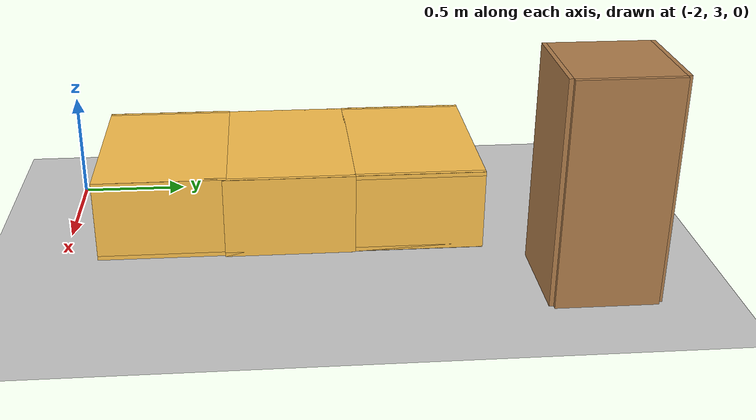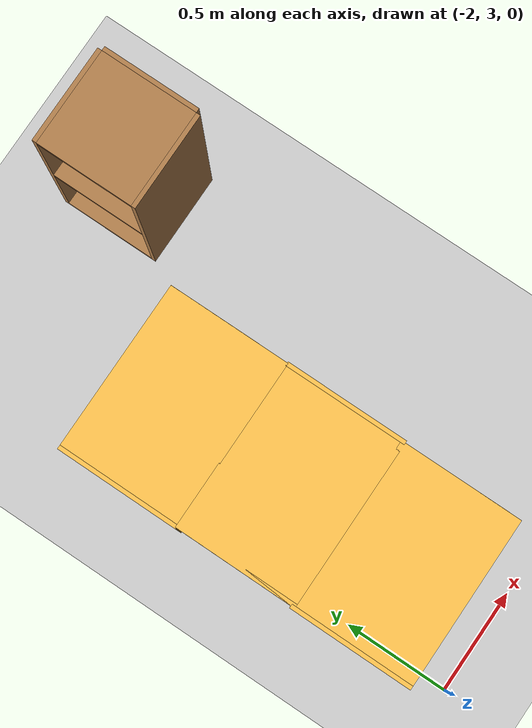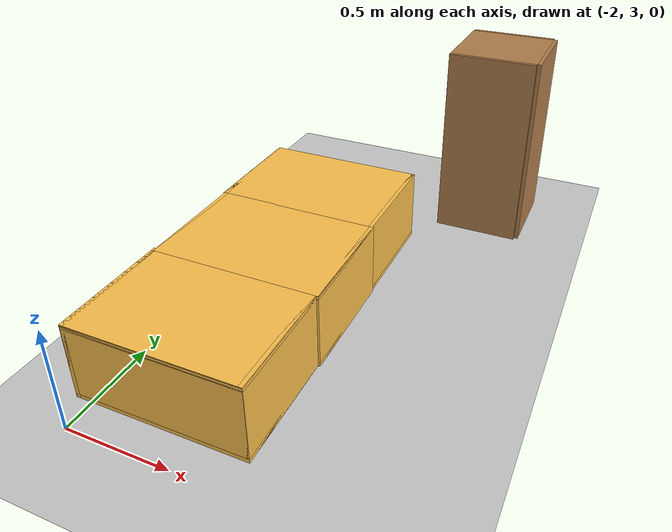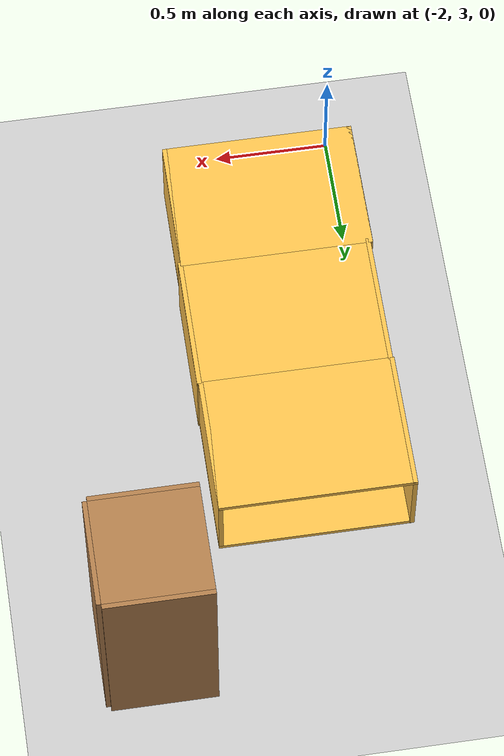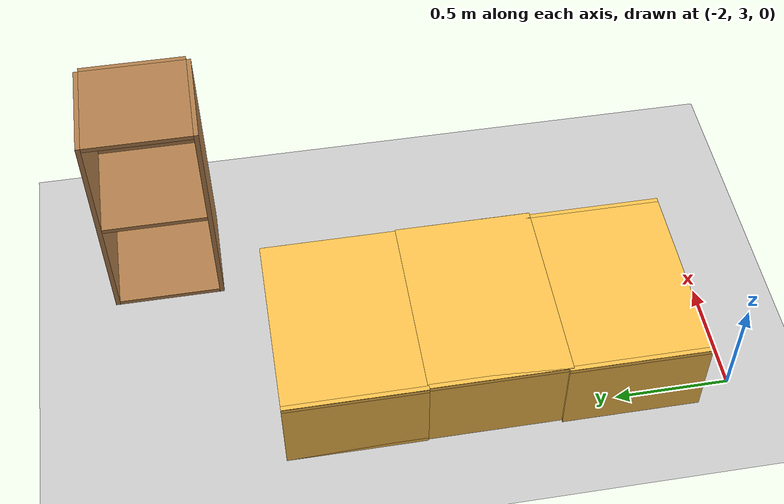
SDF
<sdf version="1.7">
 <world name="default">
  <model name="ground_plane">
   <static>1</static>
   <link name="link">
    <collision name="collision">
     <geometry><plane><normal>0 0 1</normal><size>100 100</size></plane></geometry>
     <surface><friction><ode><mu>100</mu><mu2>50</mu2></ode></friction></surface>
    </collision>
    <visual name="visual">
     <cast_shadows>0</cast_shadows>
     <geometry><plane><normal>0 0 1</normal><size>100 100</size></plane></geometry>
     <material>
      <script><uri>file://media/materials/scripts/gazebo.material</uri><name>Gazebo/Grey</name></script>
     </material>
    </visual>
   </link>
  </model>
  <model name="cabinet">
   <static>1</static>
   <link name="cabinet_bottom_plate">
    <inertial>
     <pose>0 0 -1 0 -0 0</pose>
     <inertia><ixx>2.05</ixx><ixy>0</ixy><ixz>0</ixz><iyy>2.05</iyy><iyz>0</iyz><izz>2.05</izz></inertia>
     <mass>25</mass>
    </inertial>
    <collision name="cabinet_bottom_plate_geom">
     <pose>0 0 0.01 0 -0 0</pose>
     <geometry><box><size>0.45 0.45 0.02</size></box></geometry>
    </collision>
    <visual name="cabinet_bottom_plate_geom_visual">
     <pose>0 0 0.01 0 -0 0</pose>
     <geometry><box><size>0.45 0.45 0.02</size></box></geometry>
     <material>
      <script><uri>file://media/materials/scripts/gazebo.material</uri><name>Gazebo/Wood</name></script>
     </material>
    </visual>
    <collision name="cabinet_bottom_plate_geom_cabinet_back_plate">
     <pose>0.235 0 0.51 0 -0 0</pose>
     <geometry><box><size>0.02 0.45 1.02</size></box></geometry>
    </collision>
    <visual name="cabinet_bottom_plate_geom_cabinet_back_plate_visual">
     <pose>0.235 0 0.51 0 -0 0</pose>
     <geometry><box><size>0.02 0.45 1.02</size></box></geometry>
     <material>
      <script><uri>file://media/materials/scripts/gazebo.material</uri><name>Gazebo/Wood</name></script>
     </material>
    </visual>
    <collision name="cabinet_bottom_plate_geom_cabinet_left_plate">
     <pose>0 0.235 0.51 0 -0 0</pose>
     <geometry><box><size>0.45 0.02 1.02</size></box></geometry>
    </collision>
    <visual name="cabinet_bottom_plate_geom_cabinet_left_plate_visual">
     <pose>0 0.235 0.51 0 -0 0</pose>
     <geometry><box><size>0.45 0.02 1.02</size></box></geometry>
     <material>
      <script><uri>file://media/materials/scripts/gazebo.material</uri><name>Gazebo/Wood</name></script>
     </material>
    </visual>
    <collision name="cabinet_bottom_plate_geom_cabinet_middle_plate">
     <pose>0 0 0.51 0 -0 0</pose>
     <geometry><box><size>0.45 0.45 0.02</size></box></geometry>
    </collision>
    <visual name="cabinet_bottom_plate_geom_cabinet_middle_plate_visual">
     <pose>0 0 0.51 0 -0 0</pose>
     <geometry><box><size>0.45 0.45 0.02</size></box></geometry>
     <material>
      <script><uri>file://media/materials/scripts/gazebo.material</uri><name>Gazebo/Wood</name></script>
     </material>
    </visual>
    <collision name="cabinet_bottom_plate_geom_cabinet_right_plate">
     <pose>0 -0.235 0.51 0 -0 0</pose>
     <geometry><box><size>0.45 0.02 1.02</size></box></geometry>
    </collision>
    <visual name="cabinet_bottom_plate_geom_cabinet_right_plate_visual">
     <pose>0 -0.235 0.51 0 -0 0</pose>
     <geometry><box><size>0.45 0.02 1.02</size></box></geometry>
     <material>
      <script><uri>file://media/materials/scripts/gazebo.material</uri><name>Gazebo/Wood</name></script>
     </material>
    </visual>
    <collision name="cabinet_bottom_plate_geom_cabinet_top_plate">
     <pose>0 0 1.01 0 -0 0</pose>
     <geometry><box><size>0.45 0.45 0.02</size></box></geometry>
    </collision>
    <visual name="cabinet_bottom_plate_geom_cabinet_top_plate_visual">
     <pose>0 0 1.01 0 -0 0</pose>
     <geometry><box><size>0.45 0.45 0.02</size></box></geometry>
     <material>
      <script><uri>file://media/materials/scripts/gazebo.material</uri><name>Gazebo/Wood</name></script>
     </material>
    </visual>
   </link>
   <pose>-0.918642 5.35376 0 0 -0 0</pose>
  </model>
  <model name="Fridge_Cabinet_33x15_clone_2_clone">
   <link name="Wall_17">
    <pose>0 0 0.01 0 -0 0</pose>
    <inertial>
     <mass>4.8627</mass>
     <inertia><ixx>0.146</ixx><iyy>0.4318</iyy><izz>0.2861</izz><ixy>0</ixy><ixz>0</ixz><iyz>0</iyz></inertia>
    </inertial>
    <collision name="Wall_17_Collision"><geometry><box><size>0.84 0.6 0.02</size></box></geometry></collision>
    <visual name="Wall_17_Visual">
     <geometry><box><size>0.84 0.6 0.02</size></box></geometry>
     <material>
      <script><uri>file://media/materials/scripts/gazebo.material</uri><name>Gazebo/Grey</name></script>
      <ambient>1 0.764706 0.305882 1</ambient>
     </material>
    </visual>
   </link>
   <joint name="17_21" type="fixed">
    <pose>0.42 0 0 0 -0 0</pose>
    <parent>Wall_21</parent>
    <child>Wall_17</child>
    <axis><xyz>1 0 0</xyz><limit><lower>-1e+16</lower><upper>1e+16</upper></limit></axis>
   </joint>
   <joint name="17_19" type="fixed">
    <pose>-0.42 0 0 0 -0 0</pose>
    <parent>Wall_19</parent>
    <child>Wall_17</child>
    <axis><xyz>1 0 0</xyz><limit><lower>-1e+16</lower><upper>1e+16</upper></limit></axis>
   </joint>
   <joint name="17_25" type="fixed">
    <pose>0 -0.3 0 0 -0 0</pose>
    <parent>Wall_25</parent>
    <child>Wall_17</child>
    <axis><xyz>0 1 0</xyz><limit><lower>-1e+16</lower><upper>1e+16</upper></limit></axis>
   </joint>
   <link name="Wall_19">
    <pose>-0.41 0 0.192 0 -0 0</pose>
    <inertial>
     <mass>2.223</mass>
     <inertia><ixx>0.0668</ixx><iyy>0.094</iyy><izz>0.0274</izz><ixy>0</ixy><ixz>0</ixz><iyz>0</iyz></inertia>
    </inertial>
    <collision name="Wall_19_Collision"><geometry><box><size>0.02 0.6 0.384</size></box></geometry></collision>
    <visual name="Wall_19_Visual">
     <geometry><box><size>0.02 0.6 0.384</size></box></geometry>
     <material>
      <script><uri>file://media/materials/scripts/gazebo.material</uri><name>Gazebo/Grey</name></script>
      <ambient>1 0.764706 0.305882 1</ambient>
     </material>
    </visual>
   </link>
   <link name="Wall_21">
    <pose>0.41 0 0.192 0 -0 0</pose>
    <inertial>
     <mass>2.223</mass>
     <inertia><ixx>0.0668</ixx><iyy>0.094</iyy><izz>0.0274</izz><ixy>0</ixy><ixz>0</ixz><iyz>0</iyz></inertia>
    </inertial>
    <collision name="Wall_21_Collision"><geometry><box><size>0.02 0.6 0.384</size></box></geometry></collision>
    <visual name="Wall_21_Visual">
     <geometry><box><size>0.02 0.6 0.384</size></box></geometry>
     <material>
      <script><uri>file://media/materials/scripts/gazebo.material</uri><name>Gazebo/Grey</name></script>
      <ambient>1 0.764706 0.305882 1</ambient>
     </material>
    </visual>
   </link>
   <link name="Wall_23">
    <pose>0 0 0.374 0 -0 0</pose>
    <inertial>
     <mass>4.8627</mass>
     <inertia><ixx>0.146</ixx><iyy>0.4318</iyy><izz>0.2861</izz><ixy>0</ixy><ixz>0</ixz><iyz>0</iyz></inertia>
    </inertial>
    <collision name="Wall_23_Collision"><geometry><box><size>0.84 0.6 0.02</size></box></geometry></collision>
    <visual name="Wall_23_Visual">
     <geometry><box><size>0.84 0.6 0.02</size></box></geometry>
     <material>
      <script><uri>file://media/materials/scripts/gazebo.material</uri><name>Gazebo/Grey</name></script>
      <ambient>1 0.764706 0.305882 1</ambient>
     </material>
    </visual>
   </link>
   <joint name="23_21" type="fixed">
    <pose>0.42 0 0 0 -0 0</pose>
    <parent>Wall_21</parent>
    <child>Wall_23</child>
    <axis><xyz>0 0 1</xyz><limit><lower>-1e+16</lower><upper>1e+16</upper></limit></axis>
   </joint>
   <joint name="23_19" type="fixed">
    <pose>-0.42 0 0 0 -0 0</pose>
    <parent>Wall_19</parent>
    <child>Wall_23</child>
    <axis><xyz>0 0 1</xyz><limit><lower>-1e+16</lower><upper>1e+16</upper></limit></axis>
   </joint>
   <joint name="23_25" type="fixed">
    <pose>0 -0.3 0 0 -0 0</pose>
    <parent>Wall_25</parent>
    <child>Wall_23</child>
    <axis><xyz>0 0 1</xyz><limit><lower>-1e+16</lower><upper>1e+16</upper></limit></axis>
   </joint>
   <link name="Wall_25">
    <pose>0 -0.29 0.19 0 -0 0</pose>
    <inertial>
     <mass>3.0651</mass>
     <inertia><ixx>0.037</ixx><iyy>0.1786</iyy><izz>0.2154</izz><ixy>0</ixy><ixz>0</ixz><iyz>0</iyz></inertia>
    </inertial>
    <collision name="Wall_25_Collision"><geometry><box><size>0.836 0.02 0.38</size></box></geometry></collision>
    <visual name="Wall_25_Visual">
     <geometry><box><size>0.836 0.02 0.38</size></box></geometry>
     <material>
      <script><uri>file://media/materials/scripts/gazebo.material</uri><name>Gazebo/Grey</name></script>
      <ambient>1 0.764706 0.305882 1</ambient>
     </material>
    </visual>
   </link>
   <joint name="25_21" type="fixed">
    <pose>0.42 0 0 0 -0 0</pose>
    <parent>Wall_21</parent>
    <child>Wall_25</child>
    <axis><xyz>0 1 0</xyz><limit><lower>-1e+16</lower><upper>1e+16</upper></limit></axis>
   </joint>
   <joint name="25_19" type="fixed">
    <pose>-0.42 0 0 0 -0 0</pose>
    <parent>Wall_19</parent>
    <child>Wall_25</child>
    <axis><xyz>0 1 0</xyz><limit><lower>-1e+16</lower><upper>1e+16</upper></limit></axis>
   </joint>
   <static>1</static>
   <pose>-1.65867 4.6274 -0.000205 0 -0 0</pose>
  </model>
  <model name="Fridge_Cabinet_33x15_clone_2_clone_0">
   <link name="Wall_17">
    <pose>0 0 0.01 0 -0 0</pose>
    <inertial>
     <mass>4.8627</mass>
     <inertia><ixx>0.146</ixx><iyy>0.4318</iyy><izz>0.2861</izz><ixy>0</ixy><ixz>0</ixz><iyz>0</iyz></inertia>
    </inertial>
    <collision name="Wall_17_Collision"><geometry><box><size>0.84 0.6 0.02</size></box></geometry></collision>
    <visual name="Wall_17_Visual">
     <geometry><box><size>0.84 0.6 0.02</size></box></geometry>
     <material>
      <script><uri>file://media/materials/scripts/gazebo.material</uri><name>Gazebo/Grey</name></script>
      <ambient>1 0.764706 0.305882 1</ambient>
     </material>
    </visual>
   </link>
   <joint name="17_21" type="fixed">
    <pose>0.42 0 0 0 -0 0</pose>
    <parent>Wall_21</parent>
    <child>Wall_17</child>
    <axis><xyz>1 0 0</xyz><limit><lower>-1e+16</lower><upper>1e+16</upper></limit></axis>
   </joint>
   <joint name="17_19" type="fixed">
    <pose>-0.42 0 0 0 -0 0</pose>
    <parent>Wall_19</parent>
    <child>Wall_17</child>
    <axis><xyz>1 0 0</xyz><limit><lower>-1e+16</lower><upper>1e+16</upper></limit></axis>
   </joint>
   <joint name="17_25" type="fixed">
    <pose>0 -0.3 0 0 -0 0</pose>
    <parent>Wall_25</parent>
    <child>Wall_17</child>
    <axis><xyz>0 1 0</xyz><limit><lower>-1e+16</lower><upper>1e+16</upper></limit></axis>
   </joint>
   <link name="Wall_19">
    <pose>-0.41 0 0.192 0 -0 0</pose>
    <inertial>
     <mass>2.223</mass>
     <inertia><ixx>0.0668</ixx><iyy>0.094</iyy><izz>0.0274</izz><ixy>0</ixy><ixz>0</ixz><iyz>0</iyz></inertia>
    </inertial>
    <collision name="Wall_19_Collision"><geometry><box><size>0.02 0.6 0.384</size></box></geometry></collision>
    <visual name="Wall_19_Visual">
     <geometry><box><size>0.02 0.6 0.384</size></box></geometry>
     <material>
      <script><uri>file://media/materials/scripts/gazebo.material</uri><name>Gazebo/Grey</name></script>
      <ambient>1 0.764706 0.305882 1</ambient>
     </material>
    </visual>
   </link>
   <link name="Wall_21">
    <pose>0.41 0 0.192 0 -0 0</pose>
    <inertial>
     <mass>2.223</mass>
     <inertia><ixx>0.0668</ixx><iyy>0.094</iyy><izz>0.0274</izz><ixy>0</ixy><ixz>0</ixz><iyz>0</iyz></inertia>
    </inertial>
    <collision name="Wall_21_Collision"><geometry><box><size>0.02 0.6 0.384</size></box></geometry></collision>
    <visual name="Wall_21_Visual">
     <geometry><box><size>0.02 0.6 0.384</size></box></geometry>
     <material>
      <script><uri>file://media/materials/scripts/gazebo.material</uri><name>Gazebo/Grey</name></script>
      <ambient>1 0.764706 0.305882 1</ambient>
     </material>
    </visual>
   </link>
   <link name="Wall_23">
    <pose>0 0 0.374 0 -0 0</pose>
    <inertial>
     <mass>4.8627</mass>
     <inertia><ixx>0.146</ixx><iyy>0.4318</iyy><izz>0.2861</izz><ixy>0</ixy><ixz>0</ixz><iyz>0</iyz></inertia>
    </inertial>
    <collision name="Wall_23_Collision"><geometry><box><size>0.84 0.6 0.02</size></box></geometry></collision>
    <visual name="Wall_23_Visual">
     <geometry><box><size>0.84 0.6 0.02</size></box></geometry>
     <material>
      <script><uri>file://media/materials/scripts/gazebo.material</uri><name>Gazebo/Grey</name></script>
      <ambient>1 0.764706 0.305882 1</ambient>
     </material>
    </visual>
   </link>
   <joint name="23_21" type="fixed">
    <pose>0.42 0 0 0 -0 0</pose>
    <parent>Wall_21</parent>
    <child>Wall_23</child>
    <axis><xyz>0 0 1</xyz><limit><lower>-1e+16</lower><upper>1e+16</upper></limit></axis>
   </joint>
   <joint name="23_19" type="fixed">
    <pose>-0.42 0 0 0 -0 0</pose>
    <parent>Wall_19</parent>
    <child>Wall_23</child>
    <axis><xyz>0 0 1</xyz><limit><lower>-1e+16</lower><upper>1e+16</upper></limit></axis>
   </joint>
   <joint name="23_25" type="fixed">
    <pose>0 -0.3 0 0 -0 0</pose>
    <parent>Wall_25</parent>
    <child>Wall_23</child>
    <axis><xyz>0 0 1</xyz><limit><lower>-1e+16</lower><upper>1e+16</upper></limit></axis>
   </joint>
   <link name="Wall_25">
    <pose>0 -0.29 0.19 0 -0 0</pose>
    <inertial>
     <mass>3.0651</mass>
     <inertia><ixx>0.037</ixx><iyy>0.1786</iyy><izz>0.2154</izz><ixy>0</ixy><ixz>0</ixz><iyz>0</iyz></inertia>
    </inertial>
    <collision name="Wall_25_Collision"><geometry><box><size>0.836 0.02 0.38</size></box></geometry></collision>
    <visual name="Wall_25_Visual">
     <geometry><box><size>0.836 0.02 0.38</size></box></geometry>
     <material>
      <script><uri>file://media/materials/scripts/gazebo.material</uri><name>Gazebo/Grey</name></script>
      <ambient>1 0.764706 0.305882 1</ambient>
     </material>
    </visual>
   </link>
   <joint name="25_21" type="fixed">
    <pose>0.42 0 0 0 -0 0</pose>
    <parent>Wall_21</parent>
    <child>Wall_25</child>
    <axis><xyz>0 1 0</xyz><limit><lower>-1e+16</lower><upper>1e+16</upper></limit></axis>
   </joint>
   <joint name="25_19" type="fixed">
    <pose>-0.42 0 0 0 -0 0</pose>
    <parent>Wall_19</parent>
    <child>Wall_25</child>
    <axis><xyz>0 1 0</xyz><limit><lower>-1e+16</lower><upper>1e+16</upper></limit></axis>
   </joint>
   <static>1</static>
   <pose>-1.65287 4.03303 -0.000205 0 -0 0</pose>
  </model>
  <model name="Fridge_Cabinet_33x15_clone_2_clone_1">
   <link name="Wall_17">
    <pose>0 0 0.01 0 -0 0</pose>
    <inertial>
     <mass>4.8627</mass>
     <inertia><ixx>0.146</ixx><iyy>0.4318</iyy><izz>0.2861</izz><ixy>0</ixy><ixz>0</ixz><iyz>0</iyz></inertia>
    </inertial>
    <collision name="Wall_17_Collision"><geometry><box><size>0.84 0.6 0.02</size></box></geometry></collision>
    <visual name="Wall_17_Visual">
     <geometry><box><size>0.84 0.6 0.02</size></box></geometry>
     <material>
      <script><uri>file://media/materials/scripts/gazebo.material</uri><name>Gazebo/Grey</name></script>
      <ambient>1 0.764706 0.305882 1</ambient>
     </material>
    </visual>
   </link>
   <joint name="17_21" type="fixed">
    <pose>0.42 0 0 0 -0 0</pose>
    <parent>Wall_21</parent>
    <child>Wall_17</child>
    <axis><xyz>1 0 0</xyz><limit><lower>-1e+16</lower><upper>1e+16</upper></limit></axis>
   </joint>
   <joint name="17_19" type="fixed">
    <pose>-0.42 0 0 0 -0 0</pose>
    <parent>Wall_19</parent>
    <child>Wall_17</child>
    <axis><xyz>1 0 0</xyz><limit><lower>-1e+16</lower><upper>1e+16</upper></limit></axis>
   </joint>
   <joint name="17_25" type="fixed">
    <pose>0 -0.3 0 0 -0 0</pose>
    <parent>Wall_25</parent>
    <child>Wall_17</child>
    <axis><xyz>0 1 0</xyz><limit><lower>-1e+16</lower><upper>1e+16</upper></limit></axis>
   </joint>
   <link name="Wall_19">
    <pose>-0.41 0 0.192 0 -0 0</pose>
    <inertial>
     <mass>2.223</mass>
     <inertia><ixx>0.0668</ixx><iyy>0.094</iyy><izz>0.0274</izz><ixy>0</ixy><ixz>0</ixz><iyz>0</iyz></inertia>
    </inertial>
    <collision name="Wall_19_Collision"><geometry><box><size>0.02 0.6 0.384</size></box></geometry></collision>
    <visual name="Wall_19_Visual">
     <geometry><box><size>0.02 0.6 0.384</size></box></geometry>
     <material>
      <script><uri>file://media/materials/scripts/gazebo.material</uri><name>Gazebo/Grey</name></script>
      <ambient>1 0.764706 0.305882 1</ambient>
     </material>
    </visual>
   </link>
   <link name="Wall_21">
    <pose>0.41 0 0.192 0 -0 0</pose>
    <inertial>
     <mass>2.223</mass>
     <inertia><ixx>0.0668</ixx><iyy>0.094</iyy><izz>0.0274</izz><ixy>0</ixy><ixz>0</ixz><iyz>0</iyz></inertia>
    </inertial>
    <collision name="Wall_21_Collision"><geometry><box><size>0.02 0.6 0.384</size></box></geometry></collision>
    <visual name="Wall_21_Visual">
     <geometry><box><size>0.02 0.6 0.384</size></box></geometry>
     <material>
      <script><uri>file://media/materials/scripts/gazebo.material</uri><name>Gazebo/Grey</name></script>
      <ambient>1 0.764706 0.305882 1</ambient>
     </material>
    </visual>
   </link>
   <link name="Wall_23">
    <pose>0 0 0.374 0 -0 0</pose>
    <inertial>
     <mass>4.8627</mass>
     <inertia><ixx>0.146</ixx><iyy>0.4318</iyy><izz>0.2861</izz><ixy>0</ixy><ixz>0</ixz><iyz>0</iyz></inertia>
    </inertial>
    <collision name="Wall_23_Collision"><geometry><box><size>0.84 0.6 0.02</size></box></geometry></collision>
    <visual name="Wall_23_Visual">
     <geometry><box><size>0.84 0.6 0.02</size></box></geometry>
     <material>
      <script><uri>file://media/materials/scripts/gazebo.material</uri><name>Gazebo/Grey</name></script>
      <ambient>1 0.764706 0.305882 1</ambient>
     </material>
    </visual>
   </link>
   <joint name="23_21" type="fixed">
    <pose>0.42 0 0 0 -0 0</pose>
    <parent>Wall_21</parent>
    <child>Wall_23</child>
    <axis><xyz>0 0 1</xyz><limit><lower>-1e+16</lower><upper>1e+16</upper></limit></axis>
   </joint>
   <joint name="23_19" type="fixed">
    <pose>-0.42 0 0 0 -0 0</pose>
    <parent>Wall_19</parent>
    <child>Wall_23</child>
    <axis><xyz>0 0 1</xyz><limit><lower>-1e+16</lower><upper>1e+16</upper></limit></axis>
   </joint>
   <joint name="23_25" type="fixed">
    <pose>0 -0.3 0 0 -0 0</pose>
    <parent>Wall_25</parent>
    <child>Wall_23</child>
    <axis><xyz>0 0 1</xyz><limit><lower>-1e+16</lower><upper>1e+16</upper></limit></axis>
   </joint>
   <link name="Wall_25">
    <pose>0 -0.29 0.19 0 -0 0</pose>
    <inertial>
     <mass>3.0651</mass>
     <inertia><ixx>0.037</ixx><iyy>0.1786</iyy><izz>0.2154</izz><ixy>0</ixy><ixz>0</ixz><iyz>0</iyz></inertia>
    </inertial>
    <collision name="Wall_25_Collision"><geometry><box><size>0.836 0.02 0.38</size></box></geometry></collision>
    <visual name="Wall_25_Visual">
     <geometry><box><size>0.836 0.02 0.38</size></box></geometry>
     <material>
      <script><uri>file://media/materials/scripts/gazebo.material</uri><name>Gazebo/Grey</name></script>
      <ambient>1 0.764706 0.305882 1</ambient>
     </material>
    </visual>
   </link>
   <joint name="25_21" type="fixed">
    <pose>0.42 0 0 0 -0 0</pose>
    <parent>Wall_21</parent>
    <child>Wall_25</child>
    <axis><xyz>0 1 0</xyz><limit><lower>-1e+16</lower><upper>1e+16</upper></limit></axis>
   </joint>
   <joint name="25_19" type="fixed">
    <pose>-0.42 0 0 0 -0 0</pose>
    <parent>Wall_19</parent>
    <child>Wall_25</child>
    <axis><xyz>0 1 0</xyz><limit><lower>-1e+16</lower><upper>1e+16</upper></limit></axis>
   </joint>
   <static>1</static>
   <pose>-1.66289 3.45262 -0.000205 0 -0 0</pose>
  </model>
 </world>
</sdf>
